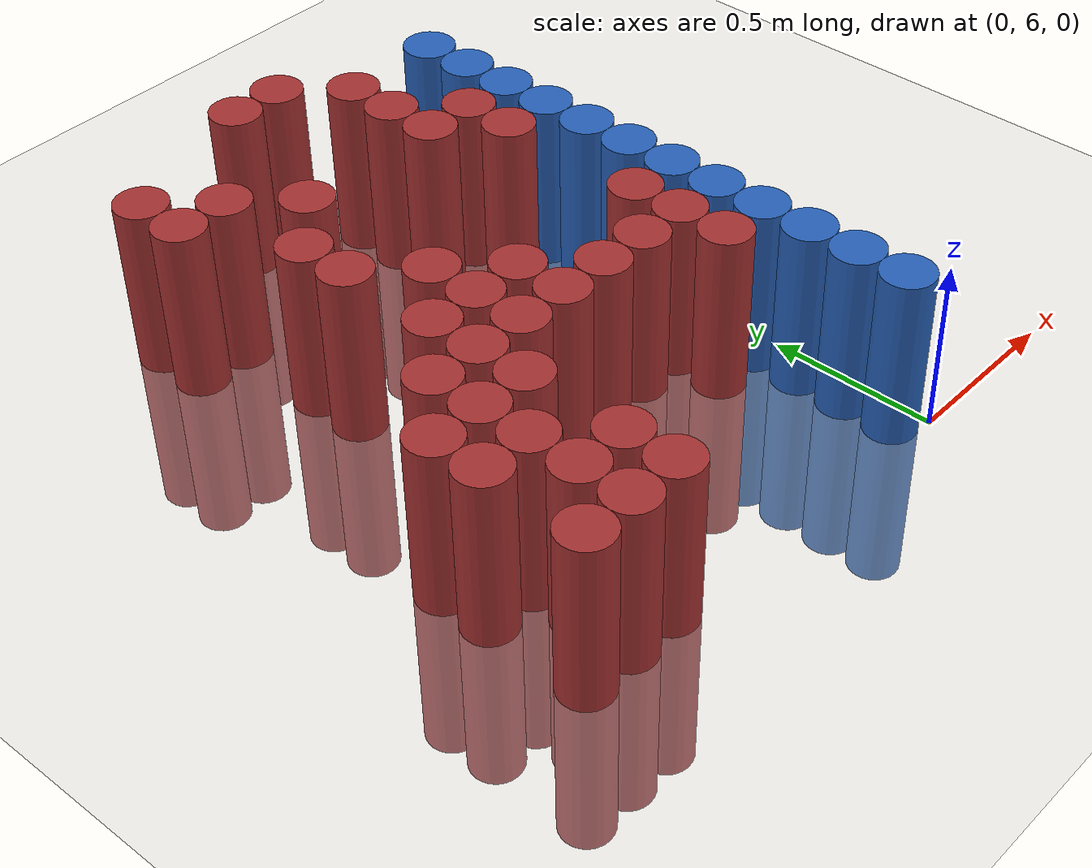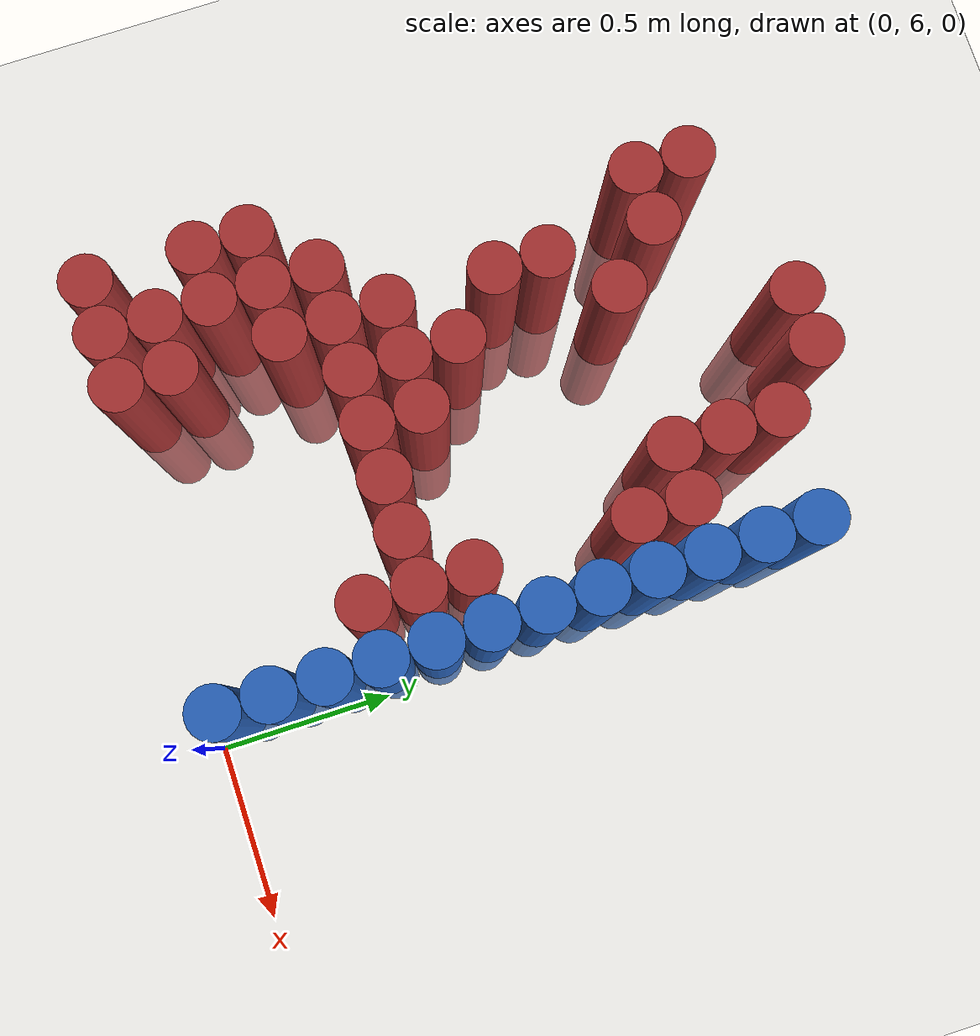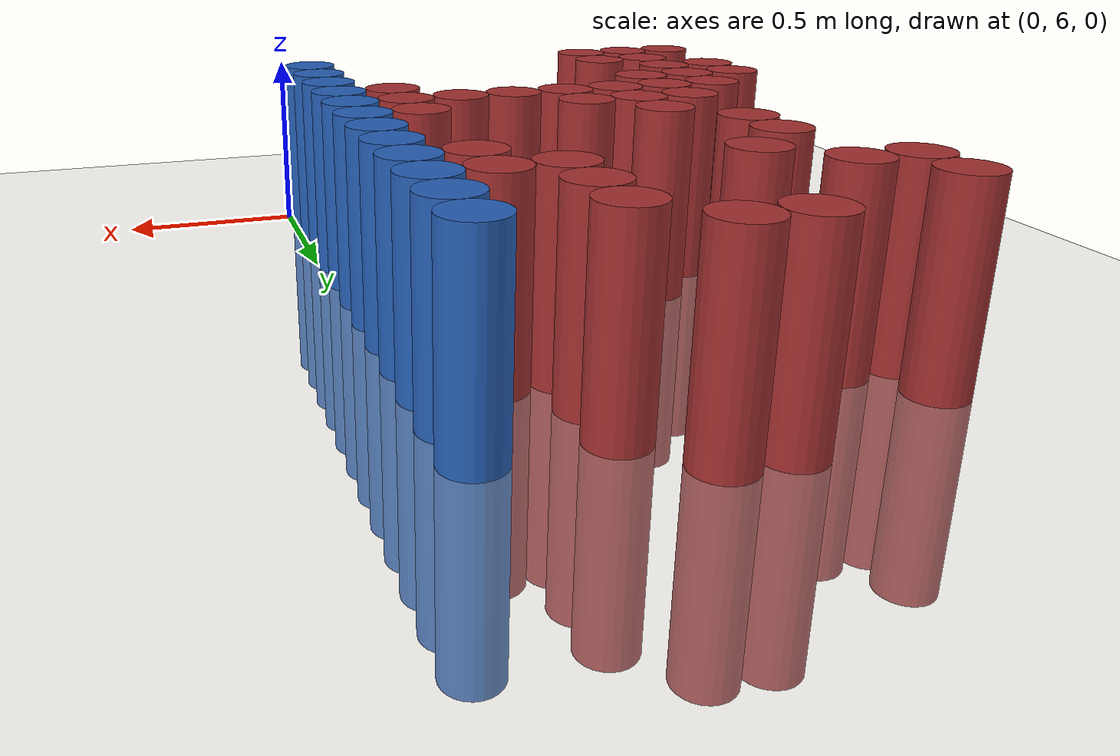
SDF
<sdf version="1.6">
 <world name="default">
  <model name="ground_plane">
   <static>1</static>
   <link name="link">
    <collision name="collision">
     <geometry><plane><normal>0 0 1</normal><size>100 100</size></plane></geometry>
     <surface><friction><ode><mu>100</mu><mu2>50</mu2></ode></friction></surface>
    </collision>
    <visual name="visual">
     <cast_shadows>0</cast_shadows>
     <geometry><plane><normal>0 0 1</normal><size>100 100</size></plane></geometry>
     <material>
      <script><uri>file://media/materials/scripts/gazebo.material</uri><name>Gazebo/Grey</name></script>
     </material>
    </visual>
   </link>
  </model>
  <model name="unit_cylinder_229">
   <static>1</static>
   <pose>-1.275000 6.075000 0.000000 0.000000 0.000000 0.000000</pose>
   <link name="link">
    <inertial>
     <mass>1</mass>
     <inertia><ixx>0.145833</ixx><ixy>0</ixy><ixz>0</ixz><iyy>0.145833</iyy><iyz>0</iyz><izz>0.125</izz></inertia>
    </inertial>
    <collision name="collision">
     <geometry><cylinder><radius>0.075000</radius><length>1</length></cylinder></geometry>
    </collision>
    <visual name="visual">
     <geometry><cylinder><radius>0.075000</radius><length>1</length></cylinder></geometry>
     <material>
      <ambient>0.648000 0.192000 0.192000 1</ambient>
      <diffuse>0.648000 0.192000 0.192000 1</diffuse>
     </material>
     <material>
      <script><name>Gazebo/Grey</name><uri>file://media/materials/scripts/gazebo.material</uri></script>
     </material>
    </visual>
   </link>
  </model>
  <model name="unit_cylinder_230">
   <static>1</static>
   <pose>-1.275000 6.375000 0.000000 0.000000 0.000000 0.000000</pose>
   <link name="link">
    <inertial>
     <mass>1</mass>
     <inertia><ixx>0.145833</ixx><ixy>0</ixy><ixz>0</ixz><iyy>0.145833</iyy><iyz>0</iyz><izz>0.125</izz></inertia>
    </inertial>
    <collision name="collision">
     <geometry><cylinder><radius>0.075000</radius><length>1</length></cylinder></geometry>
    </collision>
    <visual name="visual">
     <geometry><cylinder><radius>0.075000</radius><length>1</length></cylinder></geometry>
     <material>
      <ambient>0.648000 0.192000 0.192000 1</ambient>
      <diffuse>0.648000 0.192000 0.192000 1</diffuse>
     </material>
     <material>
      <script><name>Gazebo/Grey</name><uri>file://media/materials/scripts/gazebo.material</uri></script>
     </material>
    </visual>
   </link>
  </model>
  <model name="unit_cylinder_231">
   <static>1</static>
   <pose>-1.275000 6.525000 0.000000 0.000000 0.000000 0.000000</pose>
   <link name="link">
    <inertial>
     <mass>1</mass>
     <inertia><ixx>0.145833</ixx><ixy>0</ixy><ixz>0</ixz><iyy>0.145833</iyy><iyz>0</iyz><izz>0.125</izz></inertia>
    </inertial>
    <collision name="collision">
     <geometry><cylinder><radius>0.075000</radius><length>1</length></cylinder></geometry>
    </collision>
    <visual name="visual">
     <geometry><cylinder><radius>0.075000</radius><length>1</length></cylinder></geometry>
     <material>
      <ambient>0.648000 0.192000 0.192000 1</ambient>
      <diffuse>0.648000 0.192000 0.192000 1</diffuse>
     </material>
     <material>
      <script><name>Gazebo/Grey</name><uri>file://media/materials/scripts/gazebo.material</uri></script>
     </material>
    </visual>
   </link>
  </model>
  <model name="unit_cylinder_240">
   <static>1</static>
   <pose>-1.125000 6.075000 0.000000 0.000000 0.000000 0.000000</pose>
   <link name="link">
    <inertial>
     <mass>1</mass>
     <inertia><ixx>0.145833</ixx><ixy>0</ixy><ixz>0</ixz><iyy>0.145833</iyy><iyz>0</iyz><izz>0.125</izz></inertia>
    </inertial>
    <collision name="collision">
     <geometry><cylinder><radius>0.075000</radius><length>1</length></cylinder></geometry>
    </collision>
    <visual name="visual">
     <geometry><cylinder><radius>0.075000</radius><length>1</length></cylinder></geometry>
     <material>
      <ambient>0.648000 0.192000 0.192000 1</ambient>
      <diffuse>0.648000 0.192000 0.192000 1</diffuse>
     </material>
     <material>
      <script><name>Gazebo/Grey</name><uri>file://media/materials/scripts/gazebo.material</uri></script>
     </material>
    </visual>
   </link>
  </model>
  <model name="unit_cylinder_241">
   <static>1</static>
   <pose>-1.125000 6.225000 0.000000 0.000000 0.000000 0.000000</pose>
   <link name="link">
    <inertial>
     <mass>1</mass>
     <inertia><ixx>0.145833</ixx><ixy>0</ixy><ixz>0</ixz><iyy>0.145833</iyy><iyz>0</iyz><izz>0.125</izz></inertia>
    </inertial>
    <collision name="collision">
     <geometry><cylinder><radius>0.075000</radius><length>1</length></cylinder></geometry>
    </collision>
    <visual name="visual">
     <geometry><cylinder><radius>0.075000</radius><length>1</length></cylinder></geometry>
     <material>
      <ambient>0.648000 0.192000 0.192000 1</ambient>
      <diffuse>0.648000 0.192000 0.192000 1</diffuse>
     </material>
     <material>
      <script><name>Gazebo/Grey</name><uri>file://media/materials/scripts/gazebo.material</uri></script>
     </material>
    </visual>
   </link>
  </model>
  <model name="unit_cylinder_242">
   <static>1</static>
   <pose>-1.125000 6.375000 0.000000 0.000000 0.000000 0.000000</pose>
   <link name="link">
    <inertial>
     <mass>1</mass>
     <inertia><ixx>0.145833</ixx><ixy>0</ixy><ixz>0</ixz><iyy>0.145833</iyy><iyz>0</iyz><izz>0.125</izz></inertia>
    </inertial>
    <collision name="collision">
     <geometry><cylinder><radius>0.075000</radius><length>1</length></cylinder></geometry>
    </collision>
    <visual name="visual">
     <geometry><cylinder><radius>0.075000</radius><length>1</length></cylinder></geometry>
     <material>
      <ambient>0.648000 0.192000 0.192000 1</ambient>
      <diffuse>0.648000 0.192000 0.192000 1</diffuse>
     </material>
     <material>
      <script><name>Gazebo/Grey</name><uri>file://media/materials/scripts/gazebo.material</uri></script>
     </material>
    </visual>
   </link>
  </model>
  <model name="unit_cylinder_243">
   <static>1</static>
   <pose>-1.125000 6.525000 0.000000 0.000000 0.000000 0.000000</pose>
   <link name="link">
    <inertial>
     <mass>1</mass>
     <inertia><ixx>0.145833</ixx><ixy>0</ixy><ixz>0</ixz><iyy>0.145833</iyy><iyz>0</iyz><izz>0.125</izz></inertia>
    </inertial>
    <collision name="collision">
     <geometry><cylinder><radius>0.075000</radius><length>1</length></cylinder></geometry>
    </collision>
    <visual name="visual">
     <geometry><cylinder><radius>0.075000</radius><length>1</length></cylinder></geometry>
     <material>
      <ambient>0.648000 0.192000 0.192000 1</ambient>
      <diffuse>0.648000 0.192000 0.192000 1</diffuse>
     </material>
     <material>
      <script><name>Gazebo/Grey</name><uri>file://media/materials/scripts/gazebo.material</uri></script>
     </material>
    </visual>
   </link>
  </model>
  <model name="unit_cylinder_244">
   <static>1</static>
   <pose>-1.125000 6.675000 0.000000 0.000000 0.000000 0.000000</pose>
   <link name="link">
    <inertial>
     <mass>1</mass>
     <inertia><ixx>0.145833</ixx><ixy>0</ixy><ixz>0</ixz><iyy>0.145833</iyy><iyz>0</iyz><izz>0.125</izz></inertia>
    </inertial>
    <collision name="collision">
     <geometry><cylinder><radius>0.075000</radius><length>1</length></cylinder></geometry>
    </collision>
    <visual name="visual">
     <geometry><cylinder><radius>0.075000</radius><length>1</length></cylinder></geometry>
     <material>
      <ambient>0.648000 0.192000 0.192000 1</ambient>
      <diffuse>0.648000 0.192000 0.192000 1</diffuse>
     </material>
     <material>
      <script><name>Gazebo/Grey</name><uri>file://media/materials/scripts/gazebo.material</uri></script>
     </material>
    </visual>
   </link>
  </model>
  <model name="unit_cylinder_245">
   <static>1</static>
   <pose>-1.125000 7.575000 0.000000 0.000000 0.000000 0.000000</pose>
   <link name="link">
    <inertial>
     <mass>1</mass>
     <inertia><ixx>0.145833</ixx><ixy>0</ixy><ixz>0</ixz><iyy>0.145833</iyy><iyz>0</iyz><izz>0.125</izz></inertia>
    </inertial>
    <collision name="collision">
     <geometry><cylinder><radius>0.075000</radius><length>1</length></cylinder></geometry>
    </collision>
    <visual name="visual">
     <geometry><cylinder><radius>0.075000</radius><length>1</length></cylinder></geometry>
     <material>
      <ambient>0.648000 0.192000 0.192000 1</ambient>
      <diffuse>0.648000 0.192000 0.192000 1</diffuse>
     </material>
     <material>
      <script><name>Gazebo/Grey</name><uri>file://media/materials/scripts/gazebo.material</uri></script>
     </material>
    </visual>
   </link>
  </model>
  <model name="unit_cylinder_246">
   <static>1</static>
   <pose>-1.125000 7.725000 0.000000 0.000000 0.000000 0.000000</pose>
   <link name="link">
    <inertial>
     <mass>1</mass>
     <inertia><ixx>0.145833</ixx><ixy>0</ixy><ixz>0</ixz><iyy>0.145833</iyy><iyz>0</iyz><izz>0.125</izz></inertia>
    </inertial>
    <collision name="collision">
     <geometry><cylinder><radius>0.075000</radius><length>1</length></cylinder></geometry>
    </collision>
    <visual name="visual">
     <geometry><cylinder><radius>0.075000</radius><length>1</length></cylinder></geometry>
     <material>
      <ambient>0.648000 0.192000 0.192000 1</ambient>
      <diffuse>0.648000 0.192000 0.192000 1</diffuse>
     </material>
     <material>
      <script><name>Gazebo/Grey</name><uri>file://media/materials/scripts/gazebo.material</uri></script>
     </material>
    </visual>
   </link>
  </model>
  <model name="unit_cylinder_251">
   <static>1</static>
   <pose>-0.975000 6.075000 0.000000 0.000000 0.000000 0.000000</pose>
   <link name="link">
    <inertial>
     <mass>1</mass>
     <inertia><ixx>0.145833</ixx><ixy>0</ixy><ixz>0</ixz><iyy>0.145833</iyy><iyz>0</iyz><izz>0.125</izz></inertia>
    </inertial>
    <collision name="collision">
     <geometry><cylinder><radius>0.075000</radius><length>1</length></cylinder></geometry>
    </collision>
    <visual name="visual">
     <geometry><cylinder><radius>0.075000</radius><length>1</length></cylinder></geometry>
     <material>
      <ambient>0.648000 0.192000 0.192000 1</ambient>
      <diffuse>0.648000 0.192000 0.192000 1</diffuse>
     </material>
     <material>
      <script><name>Gazebo/Grey</name><uri>file://media/materials/scripts/gazebo.material</uri></script>
     </material>
    </visual>
   </link>
  </model>
  <model name="unit_cylinder_252">
   <static>1</static>
   <pose>-0.975000 6.225000 0.000000 0.000000 0.000000 0.000000</pose>
   <link name="link">
    <inertial>
     <mass>1</mass>
     <inertia><ixx>0.145833</ixx><ixy>0</ixy><ixz>0</ixz><iyy>0.145833</iyy><iyz>0</iyz><izz>0.125</izz></inertia>
    </inertial>
    <collision name="collision">
     <geometry><cylinder><radius>0.075000</radius><length>1</length></cylinder></geometry>
    </collision>
    <visual name="visual">
     <geometry><cylinder><radius>0.075000</radius><length>1</length></cylinder></geometry>
     <material>
      <ambient>0.648000 0.192000 0.192000 1</ambient>
      <diffuse>0.648000 0.192000 0.192000 1</diffuse>
     </material>
     <material>
      <script><name>Gazebo/Grey</name><uri>file://media/materials/scripts/gazebo.material</uri></script>
     </material>
    </visual>
   </link>
  </model>
  <model name="unit_cylinder_253">
   <static>1</static>
   <pose>-0.975000 6.525000 0.000000 0.000000 0.000000 0.000000</pose>
   <link name="link">
    <inertial>
     <mass>1</mass>
     <inertia><ixx>0.145833</ixx><ixy>0</ixy><ixz>0</ixz><iyy>0.145833</iyy><iyz>0</iyz><izz>0.125</izz></inertia>
    </inertial>
    <collision name="collision">
     <geometry><cylinder><radius>0.075000</radius><length>1</length></cylinder></geometry>
    </collision>
    <visual name="visual">
     <geometry><cylinder><radius>0.075000</radius><length>1</length></cylinder></geometry>
     <material>
      <ambient>0.648000 0.192000 0.192000 1</ambient>
      <diffuse>0.648000 0.192000 0.192000 1</diffuse>
     </material>
     <material>
      <script><name>Gazebo/Grey</name><uri>file://media/materials/scripts/gazebo.material</uri></script>
     </material>
    </visual>
   </link>
  </model>
  <model name="unit_cylinder_254">
   <static>1</static>
   <pose>-0.975000 6.675000 0.000000 0.000000 0.000000 0.000000</pose>
   <link name="link">
    <inertial>
     <mass>1</mass>
     <inertia><ixx>0.145833</ixx><ixy>0</ixy><ixz>0</ixz><iyy>0.145833</iyy><iyz>0</iyz><izz>0.125</izz></inertia>
    </inertial>
    <collision name="collision">
     <geometry><cylinder><radius>0.075000</radius><length>1</length></cylinder></geometry>
    </collision>
    <visual name="visual">
     <geometry><cylinder><radius>0.075000</radius><length>1</length></cylinder></geometry>
     <material>
      <ambient>0.648000 0.192000 0.192000 1</ambient>
      <diffuse>0.648000 0.192000 0.192000 1</diffuse>
     </material>
     <material>
      <script><name>Gazebo/Grey</name><uri>file://media/materials/scripts/gazebo.material</uri></script>
     </material>
    </visual>
   </link>
  </model>
  <model name="unit_cylinder_255">
   <static>1</static>
   <pose>-0.975000 6.825000 0.000000 0.000000 0.000000 0.000000</pose>
   <link name="link">
    <inertial>
     <mass>1</mass>
     <inertia><ixx>0.145833</ixx><ixy>0</ixy><ixz>0</ixz><iyy>0.145833</iyy><iyz>0</iyz><izz>0.125</izz></inertia>
    </inertial>
    <collision name="collision">
     <geometry><cylinder><radius>0.075000</radius><length>1</length></cylinder></geometry>
    </collision>
    <visual name="visual">
     <geometry><cylinder><radius>0.075000</radius><length>1</length></cylinder></geometry>
     <material>
      <ambient>0.648000 0.192000 0.192000 1</ambient>
      <diffuse>0.648000 0.192000 0.192000 1</diffuse>
     </material>
     <material>
      <script><name>Gazebo/Grey</name><uri>file://media/materials/scripts/gazebo.material</uri></script>
     </material>
    </visual>
   </link>
  </model>
  <model name="unit_cylinder_256">
   <static>1</static>
   <pose>-0.975000 7.125000 0.000000 0.000000 0.000000 0.000000</pose>
   <link name="link">
    <inertial>
     <mass>1</mass>
     <inertia><ixx>0.145833</ixx><ixy>0</ixy><ixz>0</ixz><iyy>0.145833</iyy><iyz>0</iyz><izz>0.125</izz></inertia>
    </inertial>
    <collision name="collision">
     <geometry><cylinder><radius>0.075000</radius><length>1</length></cylinder></geometry>
    </collision>
    <visual name="visual">
     <geometry><cylinder><radius>0.075000</radius><length>1</length></cylinder></geometry>
     <material>
      <ambient>0.648000 0.192000 0.192000 1</ambient>
      <diffuse>0.648000 0.192000 0.192000 1</diffuse>
     </material>
     <material>
      <script><name>Gazebo/Grey</name><uri>file://media/materials/scripts/gazebo.material</uri></script>
     </material>
    </visual>
   </link>
  </model>
  <model name="unit_cylinder_257">
   <static>1</static>
   <pose>-0.975000 7.275000 0.000000 0.000000 0.000000 0.000000</pose>
   <link name="link">
    <inertial>
     <mass>1</mass>
     <inertia><ixx>0.145833</ixx><ixy>0</ixy><ixz>0</ixz><iyy>0.145833</iyy><iyz>0</iyz><izz>0.125</izz></inertia>
    </inertial>
    <collision name="collision">
     <geometry><cylinder><radius>0.075000</radius><length>1</length></cylinder></geometry>
    </collision>
    <visual name="visual">
     <geometry><cylinder><radius>0.075000</radius><length>1</length></cylinder></geometry>
     <material>
      <ambient>0.648000 0.192000 0.192000 1</ambient>
      <diffuse>0.648000 0.192000 0.192000 1</diffuse>
     </material>
     <material>
      <script><name>Gazebo/Grey</name><uri>file://media/materials/scripts/gazebo.material</uri></script>
     </material>
    </visual>
   </link>
  </model>
  <model name="unit_cylinder_258">
   <static>1</static>
   <pose>-0.975000 7.575000 0.000000 0.000000 0.000000 0.000000</pose>
   <link name="link">
    <inertial>
     <mass>1</mass>
     <inertia><ixx>0.145833</ixx><ixy>0</ixy><ixz>0</ixz><iyy>0.145833</iyy><iyz>0</iyz><izz>0.125</izz></inertia>
    </inertial>
    <collision name="collision">
     <geometry><cylinder><radius>0.075000</radius><length>1</length></cylinder></geometry>
    </collision>
    <visual name="visual">
     <geometry><cylinder><radius>0.075000</radius><length>1</length></cylinder></geometry>
     <material>
      <ambient>0.648000 0.192000 0.192000 1</ambient>
      <diffuse>0.648000 0.192000 0.192000 1</diffuse>
     </material>
     <material>
      <script><name>Gazebo/Grey</name><uri>file://media/materials/scripts/gazebo.material</uri></script>
     </material>
    </visual>
   </link>
  </model>
  <model name="unit_cylinder_263">
   <static>1</static>
   <pose>-0.825000 6.675000 0.000000 0.000000 0.000000 0.000000</pose>
   <link name="link">
    <inertial>
     <mass>1</mass>
     <inertia><ixx>0.145833</ixx><ixy>0</ixy><ixz>0</ixz><iyy>0.145833</iyy><iyz>0</iyz><izz>0.125</izz></inertia>
    </inertial>
    <collision name="collision">
     <geometry><cylinder><radius>0.075000</radius><length>1</length></cylinder></geometry>
    </collision>
    <visual name="visual">
     <geometry><cylinder><radius>0.075000</radius><length>1</length></cylinder></geometry>
     <material>
      <ambient>0.648000 0.192000 0.192000 1</ambient>
      <diffuse>0.648000 0.192000 0.192000 1</diffuse>
     </material>
     <material>
      <script><name>Gazebo/Grey</name><uri>file://media/materials/scripts/gazebo.material</uri></script>
     </material>
    </visual>
   </link>
  </model>
  <model name="unit_cylinder_264">
   <static>1</static>
   <pose>-0.825000 6.825000 0.000000 0.000000 0.000000 0.000000</pose>
   <link name="link">
    <inertial>
     <mass>1</mass>
     <inertia><ixx>0.145833</ixx><ixy>0</ixy><ixz>0</ixz><iyy>0.145833</iyy><iyz>0</iyz><izz>0.125</izz></inertia>
    </inertial>
    <collision name="collision">
     <geometry><cylinder><radius>0.075000</radius><length>1</length></cylinder></geometry>
    </collision>
    <visual name="visual">
     <geometry><cylinder><radius>0.075000</radius><length>1</length></cylinder></geometry>
     <material>
      <ambient>0.648000 0.192000 0.192000 1</ambient>
      <diffuse>0.648000 0.192000 0.192000 1</diffuse>
     </material>
     <material>
      <script><name>Gazebo/Grey</name><uri>file://media/materials/scripts/gazebo.material</uri></script>
     </material>
    </visual>
   </link>
  </model>
  <model name="unit_cylinder_265">
   <static>1</static>
   <pose>-0.825000 6.975000 0.000000 0.000000 0.000000 0.000000</pose>
   <link name="link">
    <inertial>
     <mass>1</mass>
     <inertia><ixx>0.145833</ixx><ixy>0</ixy><ixz>0</ixz><iyy>0.145833</iyy><iyz>0</iyz><izz>0.125</izz></inertia>
    </inertial>
    <collision name="collision">
     <geometry><cylinder><radius>0.075000</radius><length>1</length></cylinder></geometry>
    </collision>
    <visual name="visual">
     <geometry><cylinder><radius>0.075000</radius><length>1</length></cylinder></geometry>
     <material>
      <ambient>0.648000 0.192000 0.192000 1</ambient>
      <diffuse>0.648000 0.192000 0.192000 1</diffuse>
     </material>
     <material>
      <script><name>Gazebo/Grey</name><uri>file://media/materials/scripts/gazebo.material</uri></script>
     </material>
    </visual>
   </link>
  </model>
  <model name="unit_cylinder_266">
   <static>1</static>
   <pose>-0.825000 7.425000 0.000000 0.000000 0.000000 0.000000</pose>
   <link name="link">
    <inertial>
     <mass>1</mass>
     <inertia><ixx>0.145833</ixx><ixy>0</ixy><ixz>0</ixz><iyy>0.145833</iyy><iyz>0</iyz><izz>0.125</izz></inertia>
    </inertial>
    <collision name="collision">
     <geometry><cylinder><radius>0.075000</radius><length>1</length></cylinder></geometry>
    </collision>
    <visual name="visual">
     <geometry><cylinder><radius>0.075000</radius><length>1</length></cylinder></geometry>
     <material>
      <ambient>0.648000 0.192000 0.192000 1</ambient>
      <diffuse>0.648000 0.192000 0.192000 1</diffuse>
     </material>
     <material>
      <script><name>Gazebo/Grey</name><uri>file://media/materials/scripts/gazebo.material</uri></script>
     </material>
    </visual>
   </link>
  </model>
  <model name="unit_cylinder_270">
   <static>1</static>
   <pose>-0.675000 6.675000 0.000000 0.000000 0.000000 0.000000</pose>
   <link name="link">
    <inertial>
     <mass>1</mass>
     <inertia><ixx>0.145833</ixx><ixy>0</ixy><ixz>0</ixz><iyy>0.145833</iyy><iyz>0</iyz><izz>0.125</izz></inertia>
    </inertial>
    <collision name="collision">
     <geometry><cylinder><radius>0.075000</radius><length>1</length></cylinder></geometry>
    </collision>
    <visual name="visual">
     <geometry><cylinder><radius>0.075000</radius><length>1</length></cylinder></geometry>
     <material>
      <ambient>0.648000 0.192000 0.192000 1</ambient>
      <diffuse>0.648000 0.192000 0.192000 1</diffuse>
     </material>
     <material>
      <script><name>Gazebo/Grey</name><uri>file://media/materials/scripts/gazebo.material</uri></script>
     </material>
    </visual>
   </link>
  </model>
  <model name="unit_cylinder_271">
   <static>1</static>
   <pose>-0.675000 6.825000 0.000000 0.000000 0.000000 0.000000</pose>
   <link name="link">
    <inertial>
     <mass>1</mass>
     <inertia><ixx>0.145833</ixx><ixy>0</ixy><ixz>0</ixz><iyy>0.145833</iyy><iyz>0</iyz><izz>0.125</izz></inertia>
    </inertial>
    <collision name="collision">
     <geometry><cylinder><radius>0.075000</radius><length>1</length></cylinder></geometry>
    </collision>
    <visual name="visual">
     <geometry><cylinder><radius>0.075000</radius><length>1</length></cylinder></geometry>
     <material>
      <ambient>0.648000 0.192000 0.192000 1</ambient>
      <diffuse>0.648000 0.192000 0.192000 1</diffuse>
     </material>
     <material>
      <script><name>Gazebo/Grey</name><uri>file://media/materials/scripts/gazebo.material</uri></script>
     </material>
    </visual>
   </link>
  </model>
  <model name="unit_cylinder_272">
   <static>1</static>
   <pose>-0.675000 7.875000 0.000000 0.000000 0.000000 0.000000</pose>
   <link name="link">
    <inertial>
     <mass>1</mass>
     <inertia><ixx>0.145833</ixx><ixy>0</ixy><ixz>0</ixz><iyy>0.145833</iyy><iyz>0</iyz><izz>0.125</izz></inertia>
    </inertial>
    <collision name="collision">
     <geometry><cylinder><radius>0.075000</radius><length>1</length></cylinder></geometry>
    </collision>
    <visual name="visual">
     <geometry><cylinder><radius>0.075000</radius><length>1</length></cylinder></geometry>
     <material>
      <ambient>0.648000 0.192000 0.192000 1</ambient>
      <diffuse>0.648000 0.192000 0.192000 1</diffuse>
     </material>
     <material>
      <script><name>Gazebo/Grey</name><uri>file://media/materials/scripts/gazebo.material</uri></script>
     </material>
    </visual>
   </link>
  </model>
  <model name="unit_cylinder_278">
   <static>1</static>
   <pose>-0.525000 6.675000 0.000000 0.000000 0.000000 0.000000</pose>
   <link name="link">
    <inertial>
     <mass>1</mass>
     <inertia><ixx>0.145833</ixx><ixy>0</ixy><ixz>0</ixz><iyy>0.145833</iyy><iyz>0</iyz><izz>0.125</izz></inertia>
    </inertial>
    <collision name="collision">
     <geometry><cylinder><radius>0.075000</radius><length>1</length></cylinder></geometry>
    </collision>
    <visual name="visual">
     <geometry><cylinder><radius>0.075000</radius><length>1</length></cylinder></geometry>
     <material>
      <ambient>0.648000 0.192000 0.192000 1</ambient>
      <diffuse>0.648000 0.192000 0.192000 1</diffuse>
     </material>
     <material>
      <script><name>Gazebo/Grey</name><uri>file://media/materials/scripts/gazebo.material</uri></script>
     </material>
    </visual>
   </link>
  </model>
  <model name="unit_cylinder_279">
   <static>1</static>
   <pose>-0.525000 7.875000 0.000000 0.000000 0.000000 0.000000</pose>
   <link name="link">
    <inertial>
     <mass>1</mass>
     <inertia><ixx>0.145833</ixx><ixy>0</ixy><ixz>0</ixz><iyy>0.145833</iyy><iyz>0</iyz><izz>0.125</izz></inertia>
    </inertial>
    <collision name="collision">
     <geometry><cylinder><radius>0.075000</radius><length>1</length></cylinder></geometry>
    </collision>
    <visual name="visual">
     <geometry><cylinder><radius>0.075000</radius><length>1</length></cylinder></geometry>
     <material>
      <ambient>0.648000 0.192000 0.192000 1</ambient>
      <diffuse>0.648000 0.192000 0.192000 1</diffuse>
     </material>
     <material>
      <script><name>Gazebo/Grey</name><uri>file://media/materials/scripts/gazebo.material</uri></script>
     </material>
    </visual>
   </link>
  </model>
  <model name="unit_cylinder_284">
   <static>1</static>
   <pose>-0.375000 6.675000 0.000000 0.000000 0.000000 0.000000</pose>
   <link name="link">
    <inertial>
     <mass>1</mass>
     <inertia><ixx>0.145833</ixx><ixy>0</ixy><ixz>0</ixz><iyy>0.145833</iyy><iyz>0</iyz><izz>0.125</izz></inertia>
    </inertial>
    <collision name="collision">
     <geometry><cylinder><radius>0.075000</radius><length>1</length></cylinder></geometry>
    </collision>
    <visual name="visual">
     <geometry><cylinder><radius>0.075000</radius><length>1</length></cylinder></geometry>
     <material>
      <ambient>0.648000 0.192000 0.192000 1</ambient>
      <diffuse>0.648000 0.192000 0.192000 1</diffuse>
     </material>
     <material>
      <script><name>Gazebo/Grey</name><uri>file://media/materials/scripts/gazebo.material</uri></script>
     </material>
    </visual>
   </link>
  </model>
  <model name="unit_cylinder_285">
   <static>1</static>
   <pose>-0.375000 7.425000 0.000000 0.000000 0.000000 0.000000</pose>
   <link name="link">
    <inertial>
     <mass>1</mass>
     <inertia><ixx>0.145833</ixx><ixy>0</ixy><ixz>0</ixz><iyy>0.145833</iyy><iyz>0</iyz><izz>0.125</izz></inertia>
    </inertial>
    <collision name="collision">
     <geometry><cylinder><radius>0.075000</radius><length>1</length></cylinder></geometry>
    </collision>
    <visual name="visual">
     <geometry><cylinder><radius>0.075000</radius><length>1</length></cylinder></geometry>
     <material>
      <ambient>0.648000 0.192000 0.192000 1</ambient>
      <diffuse>0.648000 0.192000 0.192000 1</diffuse>
     </material>
     <material>
      <script><name>Gazebo/Grey</name><uri>file://media/materials/scripts/gazebo.material</uri></script>
     </material>
    </visual>
   </link>
  </model>
  <model name="unit_cylinder_286">
   <static>1</static>
   <pose>-0.375000 7.575000 0.000000 0.000000 0.000000 0.000000</pose>
   <link name="link">
    <inertial>
     <mass>1</mass>
     <inertia><ixx>0.145833</ixx><ixy>0</ixy><ixz>0</ixz><iyy>0.145833</iyy><iyz>0</iyz><izz>0.125</izz></inertia>
    </inertial>
    <collision name="collision">
     <geometry><cylinder><radius>0.075000</radius><length>1</length></cylinder></geometry>
    </collision>
    <visual name="visual">
     <geometry><cylinder><radius>0.075000</radius><length>1</length></cylinder></geometry>
     <material>
      <ambient>0.648000 0.192000 0.192000 1</ambient>
      <diffuse>0.648000 0.192000 0.192000 1</diffuse>
     </material>
     <material>
      <script><name>Gazebo/Grey</name><uri>file://media/materials/scripts/gazebo.material</uri></script>
     </material>
    </visual>
   </link>
  </model>
  <model name="unit_cylinder_287">
   <static>1</static>
   <pose>-0.375000 7.725000 0.000000 0.000000 0.000000 0.000000</pose>
   <link name="link">
    <inertial>
     <mass>1</mass>
     <inertia><ixx>0.145833</ixx><ixy>0</ixy><ixz>0</ixz><iyy>0.145833</iyy><iyz>0</iyz><izz>0.125</izz></inertia>
    </inertial>
    <collision name="collision">
     <geometry><cylinder><radius>0.075000</radius><length>1</length></cylinder></geometry>
    </collision>
    <visual name="visual">
     <geometry><cylinder><radius>0.075000</radius><length>1</length></cylinder></geometry>
     <material>
      <ambient>0.648000 0.192000 0.192000 1</ambient>
      <diffuse>0.648000 0.192000 0.192000 1</diffuse>
     </material>
     <material>
      <script><name>Gazebo/Grey</name><uri>file://media/materials/scripts/gazebo.material</uri></script>
     </material>
    </visual>
   </link>
  </model>
  <model name="unit_cylinder_295">
   <static>1</static>
   <pose>-0.225000 6.525000 0.000000 0.000000 0.000000 0.000000</pose>
   <link name="link">
    <inertial>
     <mass>1</mass>
     <inertia><ixx>0.145833</ixx><ixy>0</ixy><ixz>0</ixz><iyy>0.145833</iyy><iyz>0</iyz><izz>0.125</izz></inertia>
    </inertial>
    <collision name="collision">
     <geometry><cylinder><radius>0.075000</radius><length>1</length></cylinder></geometry>
    </collision>
    <visual name="visual">
     <geometry><cylinder><radius>0.075000</radius><length>1</length></cylinder></geometry>
     <material>
      <ambient>0.648000 0.192000 0.192000 1</ambient>
      <diffuse>0.648000 0.192000 0.192000 1</diffuse>
     </material>
     <material>
      <script><name>Gazebo/Grey</name><uri>file://media/materials/scripts/gazebo.material</uri></script>
     </material>
    </visual>
   </link>
  </model>
  <model name="unit_cylinder_296">
   <static>1</static>
   <pose>-0.225000 6.675000 0.000000 0.000000 0.000000 0.000000</pose>
   <link name="link">
    <inertial>
     <mass>1</mass>
     <inertia><ixx>0.145833</ixx><ixy>0</ixy><ixz>0</ixz><iyy>0.145833</iyy><iyz>0</iyz><izz>0.125</izz></inertia>
    </inertial>
    <collision name="collision">
     <geometry><cylinder><radius>0.075000</radius><length>1</length></cylinder></geometry>
    </collision>
    <visual name="visual">
     <geometry><cylinder><radius>0.075000</radius><length>1</length></cylinder></geometry>
     <material>
      <ambient>0.648000 0.192000 0.192000 1</ambient>
      <diffuse>0.648000 0.192000 0.192000 1</diffuse>
     </material>
     <material>
      <script><name>Gazebo/Grey</name><uri>file://media/materials/scripts/gazebo.material</uri></script>
     </material>
    </visual>
   </link>
  </model>
  <model name="unit_cylinder_297">
   <static>1</static>
   <pose>-0.225000 6.825000 0.000000 0.000000 0.000000 0.000000</pose>
   <link name="link">
    <inertial>
     <mass>1</mass>
     <inertia><ixx>0.145833</ixx><ixy>0</ixy><ixz>0</ixz><iyy>0.145833</iyy><iyz>0</iyz><izz>0.125</izz></inertia>
    </inertial>
    <collision name="collision">
     <geometry><cylinder><radius>0.075000</radius><length>1</length></cylinder></geometry>
    </collision>
    <visual name="visual">
     <geometry><cylinder><radius>0.075000</radius><length>1</length></cylinder></geometry>
     <material>
      <ambient>0.648000 0.192000 0.192000 1</ambient>
      <diffuse>0.648000 0.192000 0.192000 1</diffuse>
     </material>
     <material>
      <script><name>Gazebo/Grey</name><uri>file://media/materials/scripts/gazebo.material</uri></script>
     </material>
    </visual>
   </link>
  </model>
  <model name="unit_cylinder_298">
   <static>1</static>
   <pose>-0.225000 7.275000 0.000000 0.000000 0.000000 0.000000</pose>
   <link name="link">
    <inertial>
     <mass>1</mass>
     <inertia><ixx>0.145833</ixx><ixy>0</ixy><ixz>0</ixz><iyy>0.145833</iyy><iyz>0</iyz><izz>0.125</izz></inertia>
    </inertial>
    <collision name="collision">
     <geometry><cylinder><radius>0.075000</radius><length>1</length></cylinder></geometry>
    </collision>
    <visual name="visual">
     <geometry><cylinder><radius>0.075000</radius><length>1</length></cylinder></geometry>
     <material>
      <ambient>0.648000 0.192000 0.192000 1</ambient>
      <diffuse>0.648000 0.192000 0.192000 1</diffuse>
     </material>
     <material>
      <script><name>Gazebo/Grey</name><uri>file://media/materials/scripts/gazebo.material</uri></script>
     </material>
    </visual>
   </link>
  </model>
  <model name="unit_cylinder_299">
   <static>1</static>
   <pose>-0.225000 7.425000 0.000000 0.000000 0.000000 0.000000</pose>
   <link name="link">
    <inertial>
     <mass>1</mass>
     <inertia><ixx>0.145833</ixx><ixy>0</ixy><ixz>0</ixz><iyy>0.145833</iyy><iyz>0</iyz><izz>0.125</izz></inertia>
    </inertial>
    <collision name="collision">
     <geometry><cylinder><radius>0.075000</radius><length>1</length></cylinder></geometry>
    </collision>
    <visual name="visual">
     <geometry><cylinder><radius>0.075000</radius><length>1</length></cylinder></geometry>
     <material>
      <ambient>0.648000 0.192000 0.192000 1</ambient>
      <diffuse>0.648000 0.192000 0.192000 1</diffuse>
     </material>
     <material>
      <script><name>Gazebo/Grey</name><uri>file://media/materials/scripts/gazebo.material</uri></script>
     </material>
    </visual>
   </link>
  </model>
  <model name="unit_cylinder_313">
   <static>1</static>
   <pose>-0.075000 6.075000 0.000000 0.000000 0.000000 0.000000</pose>
   <link name="link">
    <inertial>
     <mass>1</mass>
     <inertia><ixx>0.145833</ixx><ixy>0</ixy><ixz>0</ixz><iyy>0.145833</iyy><iyz>0</iyz><izz>0.125</izz></inertia>
    </inertial>
    <collision name="collision">
     <geometry><cylinder><radius>0.075000</radius><length>1</length></cylinder></geometry>
    </collision>
    <visual name="visual">
     <geometry><cylinder><radius>0.075000</radius><length>1</length></cylinder></geometry>
     <material>
      <ambient>0.152000 0.379000 0.720000 1</ambient>
      <diffuse>0.152000 0.379000 0.720000 1</diffuse>
     </material>
     <material>
      <script><name>Gazebo/Grey</name><uri>file://media/materials/scripts/gazebo.material</uri></script>
     </material>
    </visual>
   </link>
  </model>
  <model name="unit_cylinder_314">
   <static>1</static>
   <pose>-0.075000 6.225000 0.000000 0.000000 0.000000 0.000000</pose>
   <link name="link">
    <inertial>
     <mass>1</mass>
     <inertia><ixx>0.145833</ixx><ixy>0</ixy><ixz>0</ixz><iyy>0.145833</iyy><iyz>0</iyz><izz>0.125</izz></inertia>
    </inertial>
    <collision name="collision">
     <geometry><cylinder><radius>0.075000</radius><length>1</length></cylinder></geometry>
    </collision>
    <visual name="visual">
     <geometry><cylinder><radius>0.075000</radius><length>1</length></cylinder></geometry>
     <material>
      <ambient>0.152000 0.379000 0.720000 1</ambient>
      <diffuse>0.152000 0.379000 0.720000 1</diffuse>
     </material>
     <material>
      <script><name>Gazebo/Grey</name><uri>file://media/materials/scripts/gazebo.material</uri></script>
     </material>
    </visual>
   </link>
  </model>
  <model name="unit_cylinder_315">
   <static>1</static>
   <pose>-0.075000 6.375000 0.000000 0.000000 0.000000 0.000000</pose>
   <link name="link">
    <inertial>
     <mass>1</mass>
     <inertia><ixx>0.145833</ixx><ixy>0</ixy><ixz>0</ixz><iyy>0.145833</iyy><iyz>0</iyz><izz>0.125</izz></inertia>
    </inertial>
    <collision name="collision">
     <geometry><cylinder><radius>0.075000</radius><length>1</length></cylinder></geometry>
    </collision>
    <visual name="visual">
     <geometry><cylinder><radius>0.075000</radius><length>1</length></cylinder></geometry>
     <material>
      <ambient>0.152000 0.379000 0.720000 1</ambient>
      <diffuse>0.152000 0.379000 0.720000 1</diffuse>
     </material>
     <material>
      <script><name>Gazebo/Grey</name><uri>file://media/materials/scripts/gazebo.material</uri></script>
     </material>
    </visual>
   </link>
  </model>
  <model name="unit_cylinder_316">
   <static>1</static>
   <pose>-0.075000 6.525000 0.000000 0.000000 0.000000 0.000000</pose>
   <link name="link">
    <inertial>
     <mass>1</mass>
     <inertia><ixx>0.145833</ixx><ixy>0</ixy><ixz>0</ixz><iyy>0.145833</iyy><iyz>0</iyz><izz>0.125</izz></inertia>
    </inertial>
    <collision name="collision">
     <geometry><cylinder><radius>0.075000</radius><length>1</length></cylinder></geometry>
    </collision>
    <visual name="visual">
     <geometry><cylinder><radius>0.075000</radius><length>1</length></cylinder></geometry>
     <material>
      <ambient>0.152000 0.379000 0.720000 1</ambient>
      <diffuse>0.152000 0.379000 0.720000 1</diffuse>
     </material>
     <material>
      <script><name>Gazebo/Grey</name><uri>file://media/materials/scripts/gazebo.material</uri></script>
     </material>
    </visual>
   </link>
  </model>
  <model name="unit_cylinder_317">
   <static>1</static>
   <pose>-0.075000 6.675000 0.000000 0.000000 0.000000 0.000000</pose>
   <link name="link">
    <inertial>
     <mass>1</mass>
     <inertia><ixx>0.145833</ixx><ixy>0</ixy><ixz>0</ixz><iyy>0.145833</iyy><iyz>0</iyz><izz>0.125</izz></inertia>
    </inertial>
    <collision name="collision">
     <geometry><cylinder><radius>0.075000</radius><length>1</length></cylinder></geometry>
    </collision>
    <visual name="visual">
     <geometry><cylinder><radius>0.075000</radius><length>1</length></cylinder></geometry>
     <material>
      <ambient>0.152000 0.379000 0.720000 1</ambient>
      <diffuse>0.152000 0.379000 0.720000 1</diffuse>
     </material>
     <material>
      <script><name>Gazebo/Grey</name><uri>file://media/materials/scripts/gazebo.material</uri></script>
     </material>
    </visual>
   </link>
  </model>
  <model name="unit_cylinder_318">
   <static>1</static>
   <pose>-0.075000 6.825000 0.000000 0.000000 0.000000 0.000000</pose>
   <link name="link">
    <inertial>
     <mass>1</mass>
     <inertia><ixx>0.145833</ixx><ixy>0</ixy><ixz>0</ixz><iyy>0.145833</iyy><iyz>0</iyz><izz>0.125</izz></inertia>
    </inertial>
    <collision name="collision">
     <geometry><cylinder><radius>0.075000</radius><length>1</length></cylinder></geometry>
    </collision>
    <visual name="visual">
     <geometry><cylinder><radius>0.075000</radius><length>1</length></cylinder></geometry>
     <material>
      <ambient>0.152000 0.379000 0.720000 1</ambient>
      <diffuse>0.152000 0.379000 0.720000 1</diffuse>
     </material>
     <material>
      <script><name>Gazebo/Grey</name><uri>file://media/materials/scripts/gazebo.material</uri></script>
     </material>
    </visual>
   </link>
  </model>
  <model name="unit_cylinder_319">
   <static>1</static>
   <pose>-0.075000 6.975000 0.000000 0.000000 0.000000 0.000000</pose>
   <link name="link">
    <inertial>
     <mass>1</mass>
     <inertia><ixx>0.145833</ixx><ixy>0</ixy><ixz>0</ixz><iyy>0.145833</iyy><iyz>0</iyz><izz>0.125</izz></inertia>
    </inertial>
    <collision name="collision">
     <geometry><cylinder><radius>0.075000</radius><length>1</length></cylinder></geometry>
    </collision>
    <visual name="visual">
     <geometry><cylinder><radius>0.075000</radius><length>1</length></cylinder></geometry>
     <material>
      <ambient>0.152000 0.379000 0.720000 1</ambient>
      <diffuse>0.152000 0.379000 0.720000 1</diffuse>
     </material>
     <material>
      <script><name>Gazebo/Grey</name><uri>file://media/materials/scripts/gazebo.material</uri></script>
     </material>
    </visual>
   </link>
  </model>
  <model name="unit_cylinder_320">
   <static>1</static>
   <pose>-0.075000 7.125000 0.000000 0.000000 0.000000 0.000000</pose>
   <link name="link">
    <inertial>
     <mass>1</mass>
     <inertia><ixx>0.145833</ixx><ixy>0</ixy><ixz>0</ixz><iyy>0.145833</iyy><iyz>0</iyz><izz>0.125</izz></inertia>
    </inertial>
    <collision name="collision">
     <geometry><cylinder><radius>0.075000</radius><length>1</length></cylinder></geometry>
    </collision>
    <visual name="visual">
     <geometry><cylinder><radius>0.075000</radius><length>1</length></cylinder></geometry>
     <material>
      <ambient>0.152000 0.379000 0.720000 1</ambient>
      <diffuse>0.152000 0.379000 0.720000 1</diffuse>
     </material>
     <material>
      <script><name>Gazebo/Grey</name><uri>file://media/materials/scripts/gazebo.material</uri></script>
     </material>
    </visual>
   </link>
  </model>
  <model name="unit_cylinder_321">
   <static>1</static>
   <pose>-0.075000 7.275000 0.000000 0.000000 0.000000 0.000000</pose>
   <link name="link">
    <inertial>
     <mass>1</mass>
     <inertia><ixx>0.145833</ixx><ixy>0</ixy><ixz>0</ixz><iyy>0.145833</iyy><iyz>0</iyz><izz>0.125</izz></inertia>
    </inertial>
    <collision name="collision">
     <geometry><cylinder><radius>0.075000</radius><length>1</length></cylinder></geometry>
    </collision>
    <visual name="visual">
     <geometry><cylinder><radius>0.075000</radius><length>1</length></cylinder></geometry>
     <material>
      <ambient>0.152000 0.379000 0.720000 1</ambient>
      <diffuse>0.152000 0.379000 0.720000 1</diffuse>
     </material>
     <material>
      <script><name>Gazebo/Grey</name><uri>file://media/materials/scripts/gazebo.material</uri></script>
     </material>
    </visual>
   </link>
  </model>
  <model name="unit_cylinder_322">
   <static>1</static>
   <pose>-0.075000 7.425000 0.000000 0.000000 0.000000 0.000000</pose>
   <link name="link">
    <inertial>
     <mass>1</mass>
     <inertia><ixx>0.145833</ixx><ixy>0</ixy><ixz>0</ixz><iyy>0.145833</iyy><iyz>0</iyz><izz>0.125</izz></inertia>
    </inertial>
    <collision name="collision">
     <geometry><cylinder><radius>0.075000</radius><length>1</length></cylinder></geometry>
    </collision>
    <visual name="visual">
     <geometry><cylinder><radius>0.075000</radius><length>1</length></cylinder></geometry>
     <material>
      <ambient>0.152000 0.379000 0.720000 1</ambient>
      <diffuse>0.152000 0.379000 0.720000 1</diffuse>
     </material>
     <material>
      <script><name>Gazebo/Grey</name><uri>file://media/materials/scripts/gazebo.material</uri></script>
     </material>
    </visual>
   </link>
  </model>
  <model name="unit_cylinder_323">
   <static>1</static>
   <pose>-0.075000 7.575000 0.000000 0.000000 0.000000 0.000000</pose>
   <link name="link">
    <inertial>
     <mass>1</mass>
     <inertia><ixx>0.145833</ixx><ixy>0</ixy><ixz>0</ixz><iyy>0.145833</iyy><iyz>0</iyz><izz>0.125</izz></inertia>
    </inertial>
    <collision name="collision">
     <geometry><cylinder><radius>0.075000</radius><length>1</length></cylinder></geometry>
    </collision>
    <visual name="visual">
     <geometry><cylinder><radius>0.075000</radius><length>1</length></cylinder></geometry>
     <material>
      <ambient>0.152000 0.379000 0.720000 1</ambient>
      <diffuse>0.152000 0.379000 0.720000 1</diffuse>
     </material>
     <material>
      <script><name>Gazebo/Grey</name><uri>file://media/materials/scripts/gazebo.material</uri></script>
     </material>
    </visual>
   </link>
  </model>
  <model name="unit_cylinder_324">
   <static>1</static>
   <pose>-0.075000 7.725000 0.000000 0.000000 0.000000 0.000000</pose>
   <link name="link">
    <inertial>
     <mass>1</mass>
     <inertia><ixx>0.145833</ixx><ixy>0</ixy><ixz>0</ixz><iyy>0.145833</iyy><iyz>0</iyz><izz>0.125</izz></inertia>
    </inertial>
    <collision name="collision">
     <geometry><cylinder><radius>0.075000</radius><length>1</length></cylinder></geometry>
    </collision>
    <visual name="visual">
     <geometry><cylinder><radius>0.075000</radius><length>1</length></cylinder></geometry>
     <material>
      <ambient>0.152000 0.379000 0.720000 1</ambient>
      <diffuse>0.152000 0.379000 0.720000 1</diffuse>
     </material>
     <material>
      <script><name>Gazebo/Grey</name><uri>file://media/materials/scripts/gazebo.material</uri></script>
     </material>
    </visual>
   </link>
  </model>
 </world>
</sdf>
